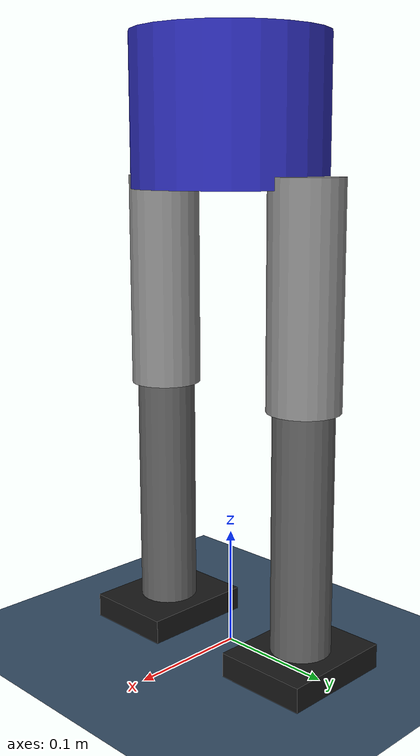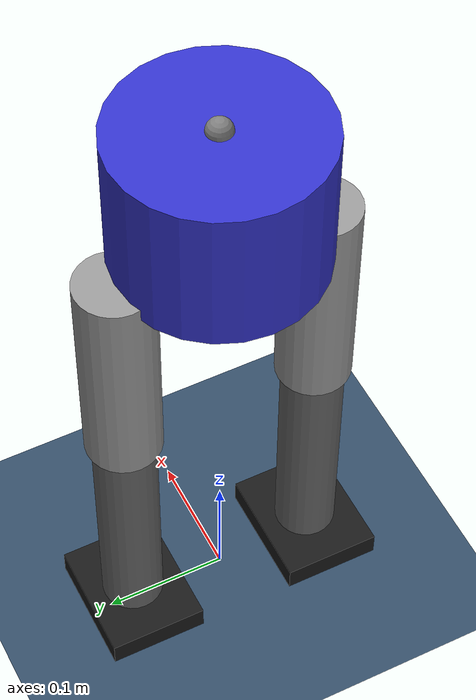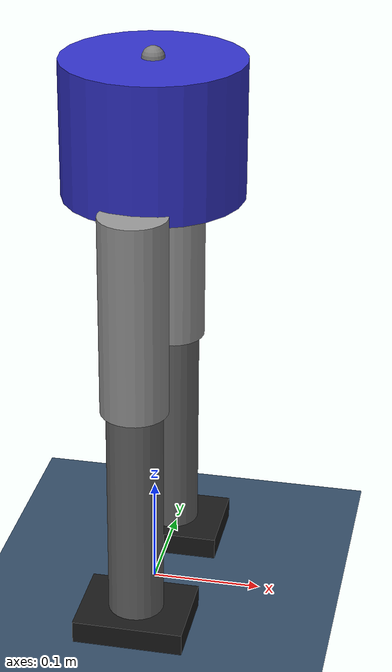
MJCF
<?xml version='1.0' encoding='utf-8'?>
<mujoco model="biped_digitigrade">
  <compiler angle="radian" autolimits="true" />
  <worldbody>
    <geom name="ground_plane" type="plane" size="0 0 0.05" rgba="0.2 0.3 0.4 1.0" />
    <light pos="0 0 3" dir="0 0 -1" directional="true" />
    <body name="base" pos="0 0 0.45">
      <freejoint name="root" />
      <inertial pos="0 0 0" mass="3.0" diaginertia="0.05 0.05 0.05" />
      <site name="imu" pos="0 0 0.06" size="0.01" />
      <geom size="0.08 0.06" type="cylinder" rgba="0.2 0.2 0.8 1" />
      <body name="left_hip_yaw_link" pos="0 0.08 0">
        <inertial pos="0 0 -0.015" mass="0.3" diaginertia="0.001 0.001 0.001" />
        <joint name="left_hip_yaw_joint" pos="0 0 0" axis="0 0 1" range="-0.523599 0.523599" actuatorfrcrange="-50 50" damping="2" frictionloss="0.2" armature="0.01" />
        <body name="left_hip_roll_link" pos="0 0 -0.03">
          <inertial pos="0 0 -0.01" mass="0.2" diaginertia="0.0005 0.0005 0.0005" />
          <joint name="left_hip_roll_joint" pos="0 0 0" axis="1 0 0" range="-0.349066 0.349066" actuatorfrcrange="-50 50" damping="2" frictionloss="0.2" armature="0.01" />
          <body name="left_thigh_link" pos="0 0 -0.02">
            <inertial pos="0 0 -0.09" mass="1" diaginertia="0.01 0.01 0.001" />
            <joint name="left_hip_pitch_joint" pos="0 0 0" axis="0 1 0" range="-1.5708 1.5708" actuatorfrcrange="-100 100" damping="2" frictionloss="0.2" armature="0.01" />
            <geom size="0.03 0.09" pos="0 0 -0.09" type="cylinder" rgba="0.6 0.6 0.6 1" />
            <body name="left_shank_link" pos="0 0 -0.18">
              <inertial pos="0 0 -0.1" mass="0.6" diaginertia="0.005 0.005 0.0005" />
              <joint name="left_knee_pitch_joint" pos="0 0 0" axis="0 1 0" range="-2.0944 0" actuatorfrcrange="-100 100" damping="2" frictionloss="0.2" armature="0.01" />
              <geom size="0.025 0.1" pos="0 0 -0.1" type="cylinder" rgba="0.4 0.4 0.4 1" />
              <body name="left_foot_link" pos="0 0 -0.2">
                <inertial pos="0 0 -0.015" mass="0.3" diaginertia="0.001 0.001 0.001" />
                <joint name="left_ankle_pitch_joint" pos="0 0 0" axis="0 1 0" range="-0.785398 2.35619" actuatorfrcrange="-50 50" damping="2" frictionloss="0.2" armature="0.01" />
                <geom size="0.05 0.04 0.015" pos="0 0 -0.015" type="box" rgba="0.1 0.1 0.1 1" name="left_foot" friction="0.8 0.02 0.01" solimp="0.015 1 0.03" condim="6" priority="1" />
              </body>
            </body>
          </body>
        </body>
      </body>
      <body name="right_hip_yaw_link" pos="0 -0.08 0">
        <inertial pos="0 0 -0.015" mass="0.3" diaginertia="0.001 0.001 0.001" />
        <joint name="right_hip_yaw_joint" pos="0 0 0" axis="0 0 1" range="-0.523599 0.523599" actuatorfrcrange="-50 50" damping="2" frictionloss="0.2" armature="0.01" />
        <body name="right_hip_roll_link" pos="0 0 -0.03">
          <inertial pos="0 0 -0.01" mass="0.2" diaginertia="0.0005 0.0005 0.0005" />
          <joint name="right_hip_roll_joint" pos="0 0 0" axis="1 0 0" range="-0.349066 0.349066" actuatorfrcrange="-50 50" damping="2" frictionloss="0.2" armature="0.01" />
          <body name="right_thigh_link" pos="0 0 -0.02">
            <inertial pos="0 0 -0.09" mass="1" diaginertia="0.01 0.01 0.001" />
            <joint name="right_hip_pitch_joint" pos="0 0 0" axis="0 1 0" range="-1.5708 1.5708" actuatorfrcrange="-100 100" damping="2" frictionloss="0.2" armature="0.01" />
            <geom size="0.03 0.09" pos="0 0 -0.09" type="cylinder" rgba="0.6 0.6 0.6 1" />
            <body name="right_shank_link" pos="0 0 -0.18">
              <inertial pos="0 0 -0.1" mass="0.6" diaginertia="0.005 0.005 0.0005" />
              <joint name="right_knee_pitch_joint" pos="0 0 0" axis="0 1 0" range="-2.0944 0" actuatorfrcrange="-100 100" damping="2" frictionloss="0.2" armature="0.01" />
              <geom size="0.025 0.1" pos="0 0 -0.1" type="cylinder" rgba="0.4 0.4 0.4 1" />
              <body name="right_foot_link" pos="0 0 -0.2">
                <inertial pos="0 0 -0.015" mass="0.3" diaginertia="0.001 0.001 0.001" />
                <joint name="right_ankle_pitch_joint" pos="0 0 0" axis="0 1 0" range="-0.785398 2.35619" actuatorfrcrange="-50 50" damping="2" frictionloss="0.2" armature="0.01" />
                <geom size="0.05 0.04 0.015" pos="0 0 -0.015" type="box" rgba="0.1 0.1 0.1 1" name="right_foot" friction="0.8 0.02 0.01" solimp="0.015 1 0.03" condim="6" priority="1" />
              </body>
            </body>
          </body>
        </body>
      </body>
    </body>
  </worldbody>
  <option cone="elliptic" impratio="100" />
  <actuator>
    <motor name="left_hip_yaw" joint="left_hip_yaw_joint" gear="1" ctrlrange="-50.0 50.0" />
    <motor name="left_hip_roll" joint="left_hip_roll_joint" gear="1" ctrlrange="-50.0 50.0" />
    <motor name="left_hip_pitch" joint="left_hip_pitch_joint" gear="1" ctrlrange="-100.0 100.0" />
    <motor name="left_knee_pitch" joint="left_knee_pitch_joint" gear="1" ctrlrange="-100.0 100.0" />
    <motor name="left_ankle_pitch" joint="left_ankle_pitch_joint" gear="1" ctrlrange="-50.0 50.0" />
    <motor name="right_hip_yaw" joint="right_hip_yaw_joint" gear="1" ctrlrange="-50.0 50.0" />
    <motor name="right_hip_roll" joint="right_hip_roll_joint" gear="1" ctrlrange="-50.0 50.0" />
    <motor name="right_hip_pitch" joint="right_hip_pitch_joint" gear="1" ctrlrange="-100.0 100.0" />
    <motor name="right_knee_pitch" joint="right_knee_pitch_joint" gear="1" ctrlrange="-100.0 100.0" />
    <motor name="right_ankle_pitch" joint="right_ankle_pitch_joint" gear="1" ctrlrange="-50.0 50.0" />
  </actuator>
  <keyframe>
    <key name="home" qpos="0 0 0.45 1 0 0 0 0.0 0.0 0.0 -0.52 0.52 0.0 0.0 0.0 -0.52 0.52" ctrl="0.0 0.0 0.0 -0.52 0.52 0.0 0.0 0.0 -0.52 0.52" />
  </keyframe>
  <sensor>
    <gyro site="imu" name="gyro" />
    <accelerometer site="imu" name="accelerometer" />
    <framequat objtype="site" objname="imu" name="orientation" />
  </sensor>
</mujoco>
